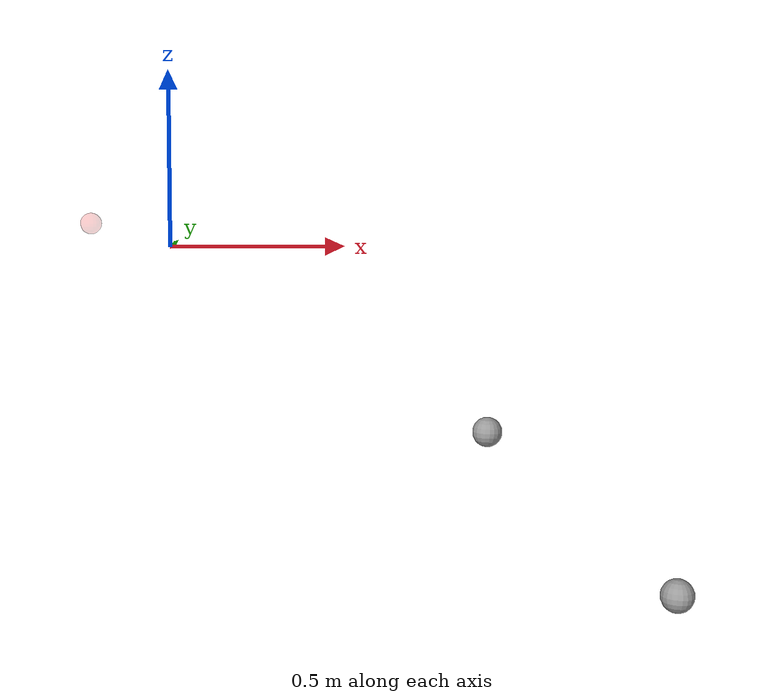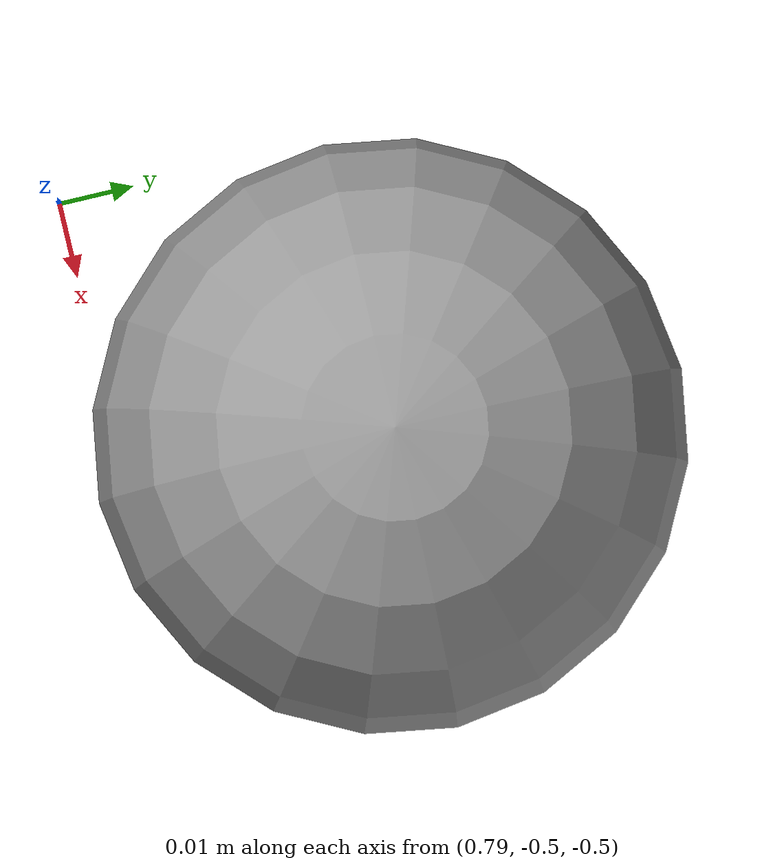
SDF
<?xml version='1.0'?>
<sdf version='1.6'>
  <model name='unit_sphere'>
    <link name='link_0'>
      <inertial>
        <mass>0.5</mass>
        <inertia>
          <ixx>0.00022401</ixx>
          <ixy>0</ixy>
          <ixz>0</ixz>
          <iyy>0.00022401</iyy>
          <iyz>0</iyz>
          <izz>0.00022401</izz>
        </inertia>
        <pose frame=''>0 0 0 0 -0 0</pose>
      </inertial>
      <pose frame=''>-0.270432 0.432758 0.05714 0 -0 0</pose>
      <gravity>1</gravity>
      <self_collide>0</self_collide>
      <kinematic>0</kinematic>
      <enable_wind>0</enable_wind>
      <visual name='visual'>
        <pose frame=''>0 0 0 0 -0 0</pose>
        <geometry>
          <sphere>
            <radius>0.0334675</radius>
          </sphere>
        </geometry>
        <material>
          <lighting>1</lighting>
          <script>
            <uri>file://media/materials/scripts/gazebo.material</uri>
            <name>Gazebo/Grey</name>
          </script>
          <shader type='pixel'>
            <normal_map>__default__</normal_map>
          </shader>
          <diffuse>0.9 0 0 0.2</diffuse>
          <ambient>0.3 0.3 0.3 1</ambient>
          <specular>0.51 0.71 0.01 1</specular>
          <emissive>0 0 0 1</emissive>
        </material>
        <transparency>0</transparency>
        <cast_shadows>1</cast_shadows>
      </visual>
      <collision name='collision'>
        <laser_retro>0</laser_retro>
        <max_contacts>10</max_contacts>
        <pose frame=''>0 0 0 0 -0 0</pose>
        <geometry>
          <sphere>
            <radius>0.033467</radius>
          </sphere>
        </geometry>
        <surface>
          <friction>
            <ode>
              <mu>1</mu>
              <mu2>1</mu2>
              <fdir1>0 0 0</fdir1>
              <slip1>0</slip1>
              <slip2>0</slip2>
            </ode>
            <torsional>
              <coefficient>1</coefficient>
              <patch_radius>0</patch_radius>
              <surface_radius>0</surface_radius>
              <use_patch_radius>1</use_patch_radius>
              <ode>
                <slip>0</slip>
              </ode>
            </torsional>
          </friction>
          <bounce>
            <restitution_coefficient>0</restitution_coefficient>
            <threshold>1e+06</threshold>
          </bounce>
          <contact>
            <collide_without_contact>0</collide_without_contact>
            <collide_without_contact_bitmask>1</collide_without_contact_bitmask>
            <collide_bitmask>1</collide_bitmask>
            <ode>
              <soft_cfm>0</soft_cfm>
              <soft_erp>0.2</soft_erp>
              <kp>1e+13</kp>
              <kd>1</kd>
              <max_vel>0.01</max_vel>
              <min_depth>0</min_depth>
            </ode>
            <bullet>
              <split_impulse>1</split_impulse>
              <split_impulse_penetration_threshold>-0.01</split_impulse_penetration_threshold>
              <soft_cfm>0</soft_cfm>
              <soft_erp>0.2</soft_erp>
              <kp>1e+13</kp>
              <kd>1</kd>
            </bullet>
          </contact>
        </surface>
      </collision>
    </link>
    <model name='unit_sphere'>
      <link name='link_1'>
        <inertial>
          <mass>6.93282</mass>
          <inertia>
            <ixx>0.00413397</ixx>
            <ixy>0</ixy>
            <ixz>0</ixz>
            <iyy>0.00413397</iyy>
            <iyz>0</iyz>
            <izz>0.00413397</izz>
          </inertia>
          <pose frame=''>0 0 0 0 -0 0</pose>
        </inertial>
        <pose frame=''>0.562197 -0.032543 -0.403499 -0.007304 0.039778 -0.009877</pose>
        <self_collide>0</self_collide>
        <enable_wind>0</enable_wind>
        <kinematic>0</kinematic>
        <gravity>1</gravity>
        <visual name='visual'>
          <pose frame=''>0 0 0 0 -0 0</pose>
          <geometry>
            <sphere>
              <radius>0.0386101</radius>
            </sphere>
          </geometry>
          <material>
            <lighting>1</lighting>
            <script>
              <uri>file://media/materials/scripts/gazebo.material</uri>
              <name>Gazebo/Grey</name>
            </script>
            <shader type='pixel'>
              <normal_map>__default__</normal_map>
            </shader>
          </material>
          <transparency>0</transparency>
          <cast_shadows>1</cast_shadows>
        </visual>
        <collision name='collision'>
          <laser_retro>0</laser_retro>
          <max_contacts>10</max_contacts>
          <pose frame=''>0 0 0 0 -0 0</pose>
          <geometry>
            <sphere>
              <radius>0.03861</radius>
            </sphere>
          </geometry>
          <surface>
            <friction>
              <ode>
                <mu>1</mu>
                <mu2>1</mu2>
                <fdir1>0 0 0</fdir1>
                <slip1>0</slip1>
                <slip2>0</slip2>
              </ode>
              <torsional>
                <coefficient>1</coefficient>
                <patch_radius>0</patch_radius>
                <surface_radius>0</surface_radius>
                <use_patch_radius>1</use_patch_radius>
                <ode>
                  <slip>0</slip>
                </ode>
              </torsional>
            </friction>
            <bounce>
              <restitution_coefficient>0</restitution_coefficient>
              <threshold>1e+06</threshold>
            </bounce>
            <contact>
              <collide_without_contact>0</collide_without_contact>
              <collide_without_contact_bitmask>1</collide_without_contact_bitmask>
              <collide_bitmask>1</collide_bitmask>
              <ode>
                <soft_cfm>0</soft_cfm>
                <soft_erp>0.2</soft_erp>
                <kp>1e+13</kp>
                <kd>1</kd>
                <max_vel>0.01</max_vel>
                <min_depth>0</min_depth>
              </ode>
              <bullet>
                <split_impulse>1</split_impulse>
                <split_impulse_penetration_threshold>-0.01</split_impulse_penetration_threshold>
                <soft_cfm>0</soft_cfm>
                <soft_erp>0.2</soft_erp>
                <kp>1e+13</kp>
                <kd>1</kd>
              </bullet>
            </contact>
          </surface>
        </collision>
      </link>
      <model name='unit_sphere'>
        <link name='link_1'>
          <inertial>
            <mass>0.000664171</mass>
            <inertia>
              <ixx>5.05571e-07</ixx>
              <ixy>0</ixy>
              <ixz>0</ixz>
              <iyy>5.05571e-07</iyy>
              <iyz>0</iyz>
              <izz>5.05571e-07</izz>
            </inertia>
            <pose frame=''>0 0 0 0 -0 0</pose>
          </inertial>
          <pose frame=''>0.562197 -0.032543 -0.403499 -0.007304 0.039778 -0.009877</pose>
          <self_collide>0</self_collide>
          <enable_wind>0</enable_wind>
          <kinematic>0</kinematic>
          <visual name='visual'>
            <pose frame=''>0 0 0 0 -0 0</pose>
            <geometry>
              <sphere>
                <radius>0.0436242</radius>
              </sphere>
            </geometry>
            <material>
              <lighting>1</lighting>
              <script>
                <uri>file://media/materials/scripts/gazebo.material</uri>
                <name>Gazebo/Grey</name>
              </script>
              <shader type='pixel'/>
            </material>
            <transparency>0</transparency>
            <cast_shadows>1</cast_shadows>
          </visual>
          <collision name='collision'>
            <laser_retro>0</laser_retro>
            <max_contacts>10</max_contacts>
            <pose frame=''>0 0 0 0 -0 0</pose>
            <geometry>
              <sphere>
                <radius>0.043624</radius>
              </sphere>
            </geometry>
            <surface>
              <friction>
                <ode>
                  <mu>1</mu>
                  <mu2>1</mu2>
                  <fdir1>0 0 0</fdir1>
                  <slip1>0</slip1>
                  <slip2>0</slip2>
                </ode>
                <torsional>
                  <coefficient>1</coefficient>
                  <patch_radius>0</patch_radius>
                  <surface_radius>0</surface_radius>
                  <use_patch_radius>1</use_patch_radius>
                  <ode>
                    <slip>0</slip>
                  </ode>
                </torsional>
              </friction>
              <bounce>
                <restitution_coefficient>0</restitution_coefficient>
                <threshold>1e+06</threshold>
              </bounce>
              <contact>
                <collide_without_contact>0</collide_without_contact>
                <collide_without_contact_bitmask>1</collide_without_contact_bitmask>
                <collide_bitmask>1</collide_bitmask>
                <ode>
                  <soft_cfm>0</soft_cfm>
                  <soft_erp>0.2</soft_erp>
                  <kp>1e+13</kp>
                  <kd>1</kd>
                  <max_vel>0.01</max_vel>
                  <min_depth>0</min_depth>
                </ode>
                <bullet>
                  <split_impulse>1</split_impulse>
                  <split_impulse_penetration_threshold>-0.01</split_impulse_penetration_threshold>
                  <soft_cfm>0</soft_cfm>
                  <soft_erp>0.2</soft_erp>
                  <kp>1e+13</kp>
                  <kd>1</kd>
                </bullet>
              </contact>
            </surface>
          </collision>
        </link>
        <static>0</static>
        <allow_auto_disable>1</allow_auto_disable>
        <pose frame=''>0.455345 -0.17203 -0.392786 0 -0 0</pose>
      </model>
      <static>0</static>
      <allow_auto_disable>1</allow_auto_disable>
      <pose frame=''>0.270432 -0.432758 -0.05714 0 -0 0</pose>
    </model>
    <static>0</static>
    <allow_auto_disable>1</allow_auto_disable>
  </model>
</sdf>
